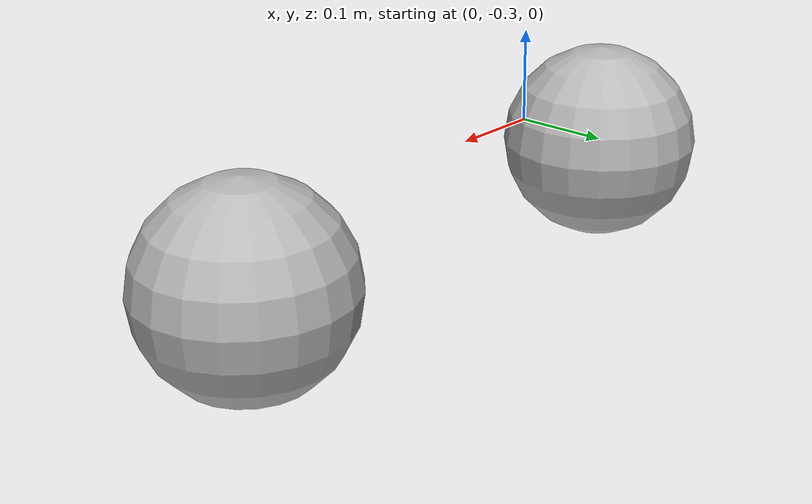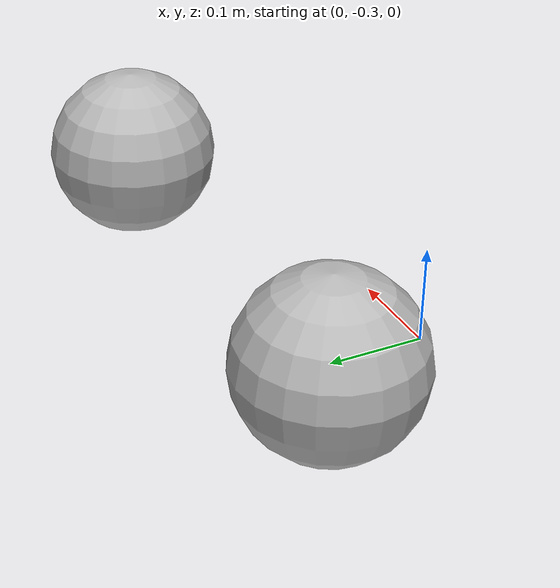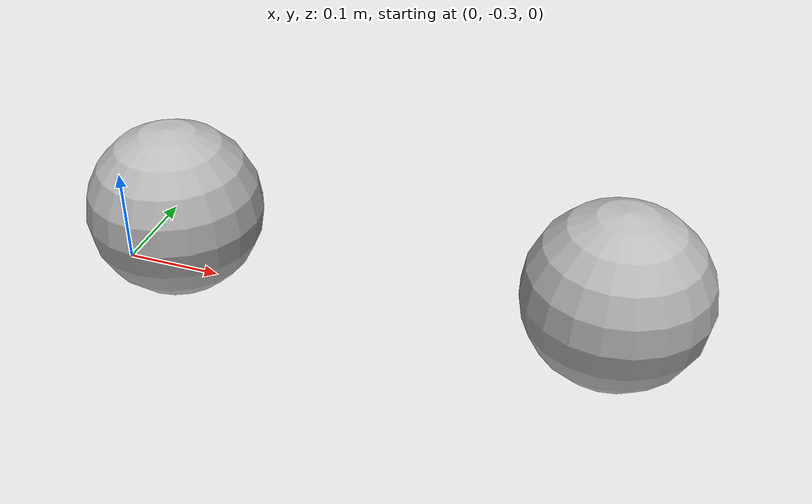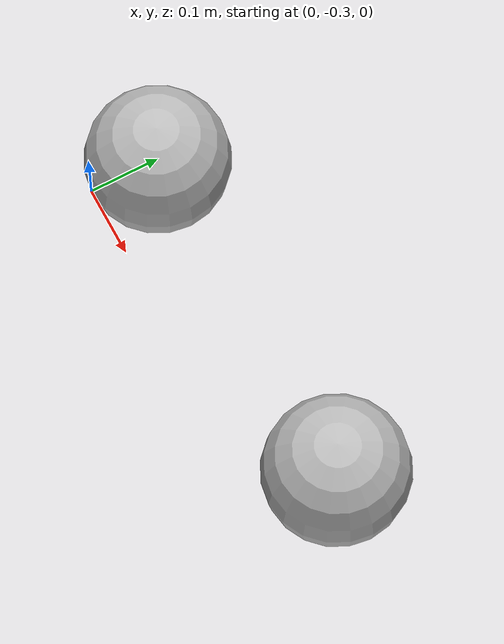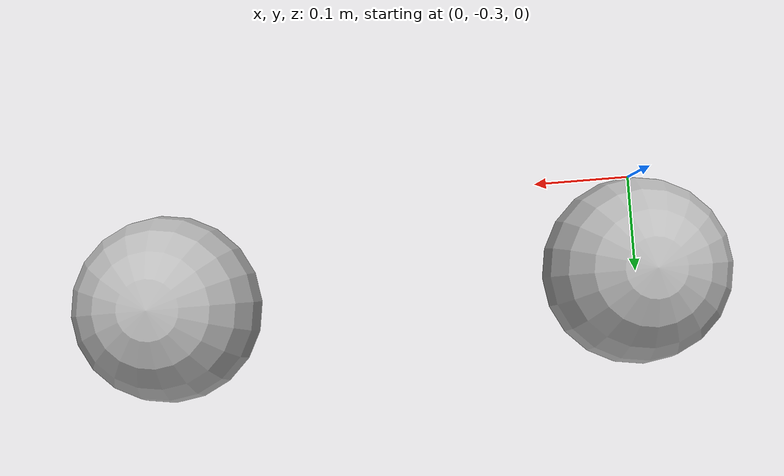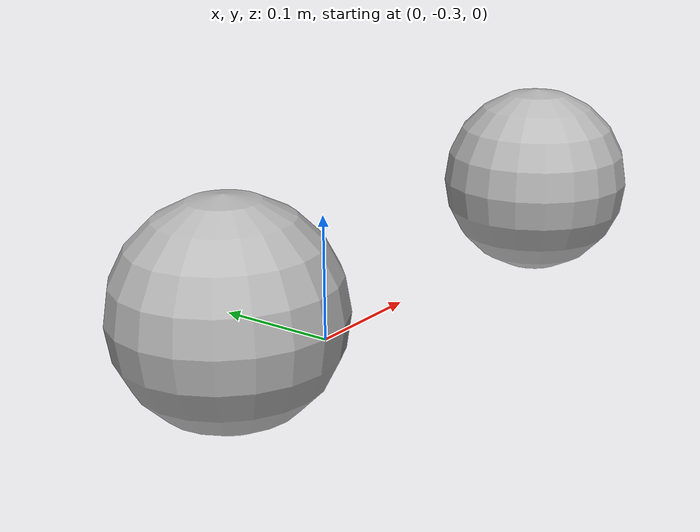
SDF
<?xml version="1.0"?>
<sdf version="1.7">
  <world name="default">
    <frame name="F1">
      <pose>0 0 10 0 0 0</pose>
    </frame>
    <model name="M1">
      <pose relative_to="F1">0.5 0 0 0 0 3.14159265358979</pose>
      <link name="L1">
        <pose>0.5 0 0 0 0 0</pose>
        <visual name="V1">
          <pose>0.0 0.2 0 0 0 0</pose>
          <geometry>
            <sphere>
              <radius>0.1</radius>
            </sphere>
          </geometry>
        </visual>
      </link>
    </model>
    <model name="M2">
      <pose relative_to="M1">0.0 0.5 0 0 0 0</pose>
      <link name="L2">
        <pose>0.5 -0.5 0 0 0 0</pose>
        <visual name="V2">
          <pose>0.0 -0.2 0 0 0 0</pose>
          <geometry>
            <sphere>
              <radius>0.1</radius>
            </sphere>
          </geometry>
        </visual>
      </link>
    </model>
  </world>
</sdf>
